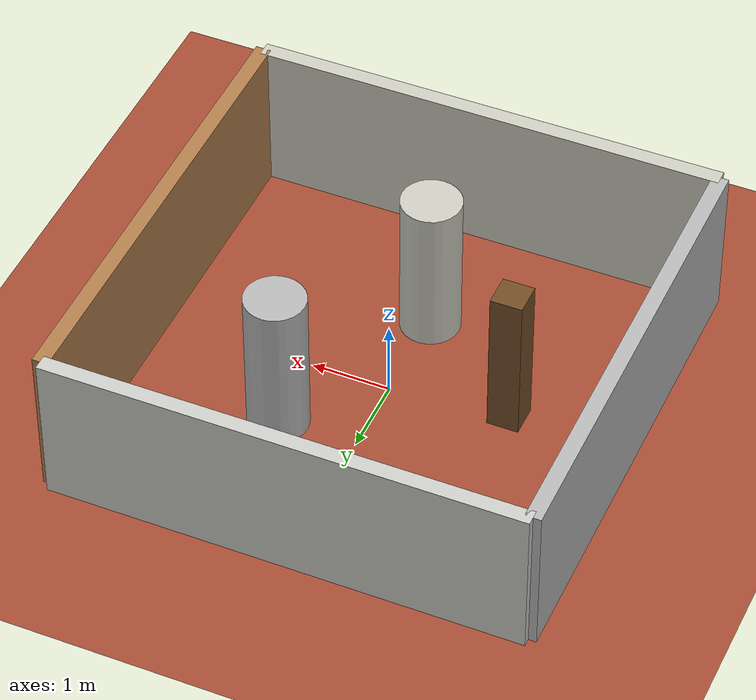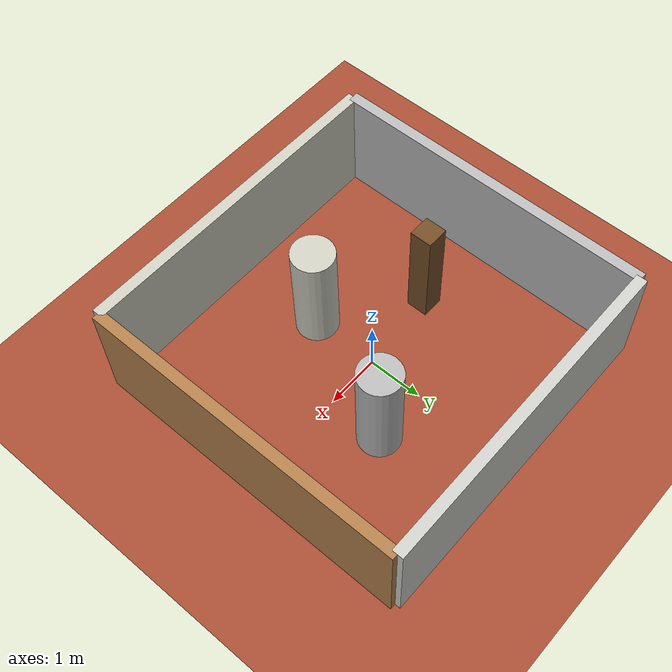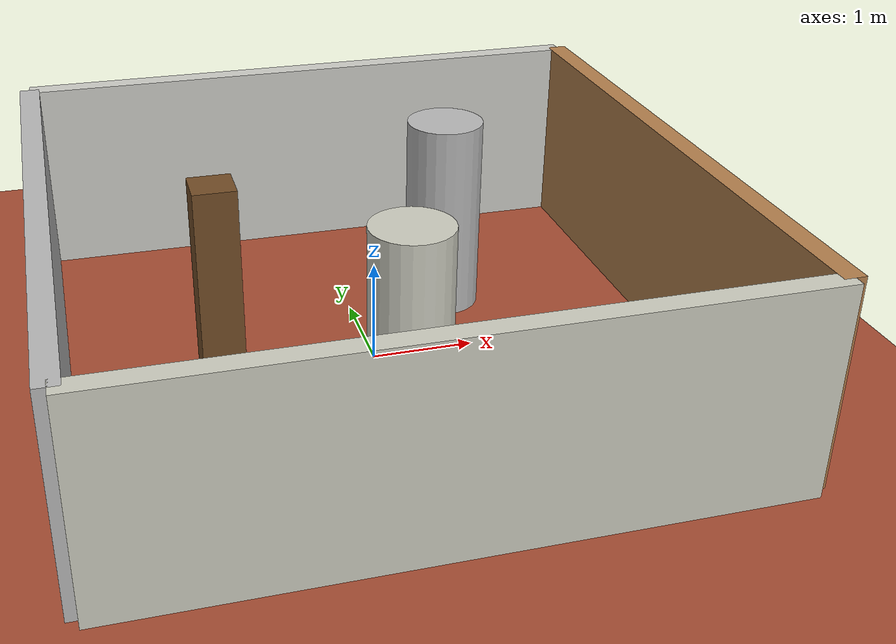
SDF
<?xml version="1.0" ?>
<sdf version="1.4">
  <world name="narrow_passage">
    <physics type="ode">
      <gravity>0 0 -9.81</gravity>
      <ode>
        <solver>
          <type>quick</type>
          <iters>20</iters>
          <sor>1.0</sor>
        </solver>
        <constraints>
          <cfm>0.0</cfm>
          <erp>0.2</erp>
          <contact_max_correcting_vel>100.0</contact_max_correcting_vel>
          <contact_surface_layer>0.0</contact_surface_layer>
        </constraints>
      </ode>
      <real_time_update_rate>1000</real_time_update_rate>
      <max_step_size>0.001</max_step_size>
    </physics>

    <!-- A global light source -->
    <include>
      <uri>model://sun</uri>
    </include>

    <!-- A ground plane -->
    <model name="ground_plane">
      <pose>0.0 0.0 0.0 0.0 0.0 0.0</pose>
      <static>1</static>
      <link name="link">
        <collision name="collision">
          <geometry>
            <plane>
              <normal>0.000000 0.000000 1.000000</normal>
              <size>6.0000006.000000</size>
            </plane>
          </geometry>
          <surface>
            <friction>
              <ode>
                <mu>100.000000</mu>
                <mu2>50.000000</mu2>
              </ode>
            </friction>
            <bounce />
            <contact>
              <ode />
            </contact>
          </surface>
          <max_contacts>10</max_contacts>
        </collision>
        <visual name="visual">
          <cast_shadows>0</cast_shadows>
          <geometry>
            <plane>
              <normal>0.000000 0.000000 1.000000</normal>
              <size>6.000000 6.000000</size>
            </plane>
          </geometry>
          <material>
            <script>
              <uri>file://media/materials/scripts/kitchen.material</uri>
              <name>Gazebo/Bricks</name>
            </script>
          </material>
        </visual>
        <velocity_decay>
          <linear>0.000000</linear>
          <angular>0.000000</angular>
        </velocity_decay>
        <self_collide>0</self_collide>
        <kinematic>0</kinematic>
        <gravity>1</gravity>
      </link>
    </model>

    <!-- wall 1 -->
    <model name="wall_1_model">
      <pose>-3 0 1 0 0 0</pose>
      <static>true</static>
      <link name="wall_1_body">
        <inertial>
          <mass>1.0</mass>
          <inertia>
            <ixx>1.0</ixx>
            <ixy>0.0</ixy>
            <ixz>0.0</ixz>
            <iyy>1.0</iyy>
            <iyz>0.0</iyz>
            <izz>1.0</izz>
          </inertia>
        </inertial>
        <collision name="collision">
          <geometry>
            <box>
              <size>0.2 6 2</size>
            </box>
          </geometry>
        </collision>
        <visual name="visual">
          <geometry>
            <box>
              <size>0.2 6 2</size>
            </box>
          </geometry>
           <material>
            <script>
              <uri>file://media/materials/scripts/kitchen.material</uri>
              <name>Kitchen/CounterTop</name>
            </script>
          </material>
        </visual>
      </link>
    </model>

    <!-- wall 2 -->
    <model name="wall_2_model">
      <pose>3 0 1 0 0 0</pose>
      <static>true</static>
      <link name="wall_2_body">
        <inertial>
          <mass>1.0</mass>
          <inertia>
            <ixx>1.0</ixx>
            <ixy>0.0</ixy>
            <ixz>0.0</ixz>
            <iyy>1.0</iyy>
            <iyz>0.0</iyz>
            <izz>1.0</izz>
          </inertia>
        </inertial>
        <collision name="collision">
          <geometry>
            <box>
              <size>0.2 6 2</size>
            </box>
          </geometry>
        </collision>
        <visual name="visual">
          <geometry>
            <box>
              <size>0.2 6 2</size>
            </box>
          </geometry>
          <material>
            <script>
              <uri>file://media/materials/scripts/kitchen.material</uri>
              <name>Gazebo/WoodFloor</name>
            </script>
          </material>
        </visual>
      </link>
    </model>

    <!-- wall 3 -->
    <model name="wall_3_model">
      <pose>0 3 1 0 0 0</pose>
      <static>true</static>
      <link name="wall_3_body">
        <inertial>
          <mass>1.0</mass>
          <inertia>
            <ixx>1.0</ixx>
            <ixy>0.0</ixy>
            <ixz>0.0</ixz>
            <iyy>1.0</iyy>
            <iyz>0.0</iyz>
            <izz>1.0</izz>
          </inertia>
        </inertial>
        <collision name="collision">
          <geometry>
            <box>
              <size>6 0.2 2</size>
            </box>
          </geometry>
        </collision>
        <visual name="visual">
          <geometry>
            <box>
              <size>6 0.2 2</size>
            </box>
          </geometry>
          <material>
            <script>
              <uri>file://media/materials/scripts/kitchen.material</uri>
              <name>Gazebo/CeilingTiled</name>
            </script>
          </material>
        </visual>
      </link>
    </model>

    <!-- wall 4 -->
    <model name="wall_4_model">
      <pose>0 -3 1 0 0 0</pose>
      <static>true</static>
      <link name="wall_4_body">
        <inertial>
          <mass>1.0</mass>
          <inertia>
            <ixx>1.0</ixx>
            <ixy>0.0</ixy>
            <ixz>0.0</ixz>
            <iyy>1.0</iyy>
            <iyz>0.0</iyz>
            <izz>1.0</izz>
          </inertia>
        </inertial>
        <collision name="collision">
          <geometry>
            <box>
              <size>6 0.2 2</size>
            </box>
          </geometry>
        </collision>
        <visual name="visual">
          <geometry>
            <box>
              <size>6 0.2 2</size>
            </box>
          </geometry>
          <material>
            <script>
              <uri>file://media/materials/scripts/kitchen.material</uri>
              <name>Gazebo/PaintedWall</name>
            </script>
          </material>
        </visual>
      </link>
    </model>

    <!-- box 1 -->
    <model name="box_1">
      <pose>-1.5 -0.1 1.05 0 0 0</pose>
      <static>true</static>
      <link name="box_link">
      <visual name="box_visual">
        <geometry>
          <box>
              <size>0.4 0.4 2.0</size>
          </box>
        </geometry>
         <material>
            <script>
              <uri>file://media/materials/scripts/kitchen.material</uri>
              <name>Gazebo/Trunk</name>
            </script>
          </material>
      </visual>
      <collision name="box_collision">
        <geometry>
          <box>
            <size>0.4 0.4 2.0</size>
          </box>
        </geometry>
      </collision>
      </link>
    </model>

    <model name="column_1">
      <pose>1 1 1 0 0 0</pose>
      <static>true</static>
      <link name="column_link">
      <visual name="column_visual">
        <geometry>
          <cylinder>
            <radius>0.38</radius>
            <length>2.0</length>
          </cylinder>
        </geometry>
          <material>
            <script>
              <uri>file://media/materials/scripts/kitchen.material</uri>
              <name></name>
            </script>
          </material>
      </visual>
      <collision name="column_collision">
        <geometry>
          <cylinder>
            <radius>0.38</radius>
            <length>2.0</length>
          </cylinder>
        </geometry>
      </collision>
      </link>
    </model>

    <model name="column_2">
      <pose>0 -1.25 1 0 0 0</pose>
      <static>true</static>
      <link name="column_link">
      <visual name="column_visual">
        <geometry>
          <cylinder>
            <radius>0.38</radius>
            <length>2.0</length>
          </cylinder>
        </geometry>
          <material>
            <script>
              <uri>file://media/materials/scripts/kitchen.material</uri>
              <name>Gazebo/PaintedWall</name>
            </script>
          </material>
      </visual>
      <collision name="column_collision">
        <geometry>
          <cylinder>
            <radius>0.38</radius>
            <length>2.0</length>
          </cylinder>
        </geometry>
      </collision>
      </link>
    </model>

    <!-- Change the gazebo camera point of view -->
    <gui fullscreen="0">
      <camera name="user_camera">
        <pose>0 -6 16.0 0.0 1.57 -3.14159</pose>
        <view_controller>orbit</view_controller>
      </camera>
    </gui>
  </world>
</sdf>
